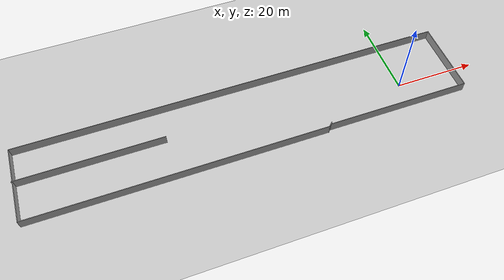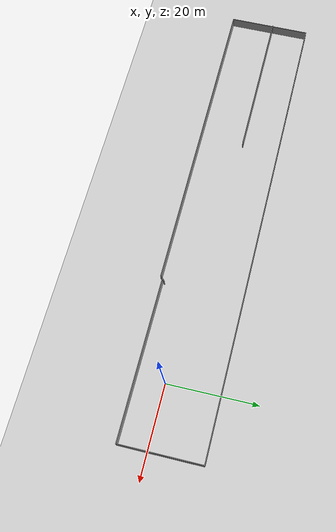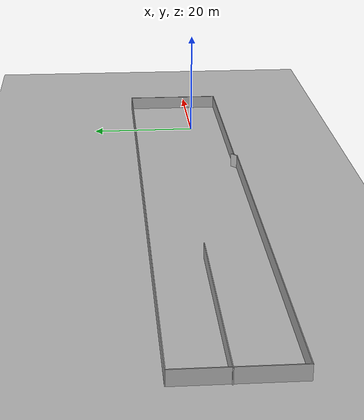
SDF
<sdf version="1.7">
 <world name="default">
  <light name="sun" type="directional">
   <pose>0 0 10 0 -0 0</pose>
   <diffuse>0.8 0.8 0.8 1</diffuse>
   <specular>0.2 0.2 0.2 1</specular>
   <attenuation>
    <range>1000</range>
    <constant>0.9</constant>
    <linear>0.01</linear>
    <quadratic>0.001</quadratic>
   </attenuation>
   <direction>-0.5 0.1 -0.9</direction>
   <spot><inner_angle>0</inner_angle><outer_angle>0</outer_angle><falloff>0</falloff></spot>
  </light>
  <model name="ground_plane">
   <static>1</static>
   <link name="link">
    <collision name="collision">
     <geometry><plane><normal>0 0 1</normal><size>100 100</size></plane></geometry>
     <surface><friction><ode><mu>100</mu><mu2>50</mu2></ode></friction></surface>
    </collision>
    <visual name="visual">
     <cast_shadows>0</cast_shadows>
     <geometry><plane><normal>0 0 1</normal><size>100 100</size></plane></geometry>
     <material>
      <script><uri>file://media/materials/scripts/gazebo.material</uri><name>Gazebo/Grey</name></script>
     </material>
    </visual>
   </link>
  </model>
  <gravity>0 0 -9.8</gravity>
  <magnetic_field>6e-06 2.3e-05 -4.2e-05</magnetic_field>
  <atmosphere type="adiabatic"/>
  <physics type="ode">
   <max_step_size>0.001</max_step_size>
   <real_time_factor>1</real_time_factor>
   <real_time_update_rate>1000</real_time_update_rate>
  </physics>
  <scene><ambient>0.4 0.4 0.4 1</ambient><background>0.7 0.7 0.7 1</background><shadows>1</shadows></scene>
  <spherical_coordinates>
   <surface_model>EARTH_WGS84</surface_model>
   <latitude_deg>0</latitude_deg>
   <longitude_deg>0</longitude_deg>
   <elevation>0</elevation>
   <heading_deg>0</heading_deg>
  </spherical_coordinates>
  <model name="my_world_robot">
   <pose>-39.4262 2.53603 0 0 -0 0</pose>
   <link name="Wall_0">
    <collision name="Wall_0_Collision">
     <geometry><box><size>35.5 0.15 2.5</size></box></geometry>
     <pose>0 0 1.25 0 -0 0</pose>
    </collision>
    <visual name="Wall_0_Visual">
     <pose>0 0 1.25 0 -0 0</pose>
     <geometry><box><size>35.5 0.15 2.5</size></box></geometry>
     <material>
      <script><uri>file://media/materials/scripts/gazebo.material</uri><name>Gazebo/Grey</name></script>
      <ambient>1 1 1 1</ambient>
     </material>
     <meta><layer>0</layer></meta>
    </visual>
    <pose>35.8592 -8.78447 0 0 -0 0</pose>
   </link>
   <link name="Wall_1">
    <collision name="Wall_1_Collision">
     <geometry><box><size>18.25 0.15 2.5</size></box></geometry>
     <pose>0 0 1.25 0 -0 0</pose>
    </collision>
    <visual name="Wall_1_Visual">
     <pose>0 0 1.25 0 -0 0</pose>
     <geometry><box><size>18.25 0.15 2.5</size></box></geometry>
     <material>
      <script><uri>file://media/materials/scripts/gazebo.material</uri><name>Gazebo/Grey</name></script>
      <ambient>1 1 1 1</ambient>
     </material>
     <meta><layer>0</layer></meta>
    </visual>
    <pose>53.5342 0.265532 0 0 -0 1.5708</pose>
   </link>
   <link name="Wall_2">
    <collision name="Wall_2_Collision">
     <geometry><box><size>107 0.15 2.5</size></box></geometry>
     <pose>0 0 1.25 0 -0 0</pose>
    </collision>
    <visual name="Wall_2_Visual">
     <pose>0 0 1.25 0 -0 0</pose>
     <geometry><box><size>107 0.15 2.5</size></box></geometry>
     <material>
      <script><uri>file://media/materials/scripts/gazebo.material</uri><name>Gazebo/Grey</name></script>
      <ambient>1 1 1 1</ambient>
     </material>
     <meta><layer>0</layer></meta>
    </visual>
    <pose>0.109184 9.31553 0 0 -0 3.14159</pose>
   </link>
   <link name="Wall_3">
    <collision name="Wall_3_Collision">
     <geometry><box><size>18.75 0.15 2.5</size></box></geometry>
     <pose>0 0 1.25 0 -0 0</pose>
    </collision>
    <visual name="Wall_3_Visual">
     <pose>0 0 1.25 0 -0 0</pose>
     <geometry><box><size>18.75 0.15 2.5</size></box></geometry>
     <material>
      <script><uri>file://media/materials/scripts/gazebo.material</uri><name>Gazebo/Grey</name></script>
      <ambient>1 1 1 1</ambient>
     </material>
     <meta><layer>0</layer></meta>
    </visual>
    <pose>-53.3158 0.015532 0 0 -0 -1.5708</pose>
   </link>
   <link name="Wall_4">
    <collision name="Wall_4_Collision">
     <geometry><box><size>71 0.15 2.5</size></box></geometry>
     <pose>0 0 1.25 0 -0 0</pose>
    </collision>
    <visual name="Wall_4_Visual">
     <pose>0 0 1.25 0 -0 0</pose>
     <geometry><box><size>71 0.15 2.5</size></box></geometry>
     <material>
      <script><uri>file://media/materials/scripts/gazebo.material</uri><name>Gazebo/Grey</name></script>
      <ambient>1 1 1 1</ambient>
     </material>
     <meta><layer>0</layer></meta>
    </visual>
    <pose>-17.8908 -9.28447 0 0 -0 0</pose>
   </link>
   <link name="Wall_5">
    <collision name="Wall_5_Collision">
     <geometry><box><size>1.5 0.15 2.5</size></box></geometry>
     <pose>0 0 1.25 0 -0 0</pose>
    </collision>
    <visual name="Wall_5_Visual">
     <pose>0 0 1.25 0 -0 0</pose>
     <geometry><box><size>1.5 0.15 2.5</size></box></geometry>
     <material>
      <script><uri>file://media/materials/scripts/gazebo.material</uri><name>Gazebo/Grey</name></script>
      <ambient>1 1 1 1</ambient>
     </material>
     <meta><layer>0</layer></meta>
    </visual>
    <pose>18.0115 -8.80717 0 0 -0 0.785398</pose>
   </link>
   <link name="Wall_7">
    <collision name="Wall_7_Collision">
     <geometry><box><size>34.75 0.15 2.5</size></box></geometry>
     <pose>0 0 1.25 0 -0 0</pose>
    </collision>
    <visual name="Wall_7_Visual">
     <pose>0 0 1.25 0 -0 0</pose>
     <geometry><box><size>34.75 0.15 2.5</size></box></geometry>
     <material>
      <script><uri>file://media/materials/scripts/gazebo.material</uri><name>Gazebo/Grey</name></script>
      <ambient>1 1 1 1</ambient>
     </material>
     <meta><layer>0</layer></meta>
    </visual>
    <pose>-36.2342 0.805357 0 0 -0 0</pose>
   </link>
   <static>1</static>
  </model>
 </world>
</sdf>
